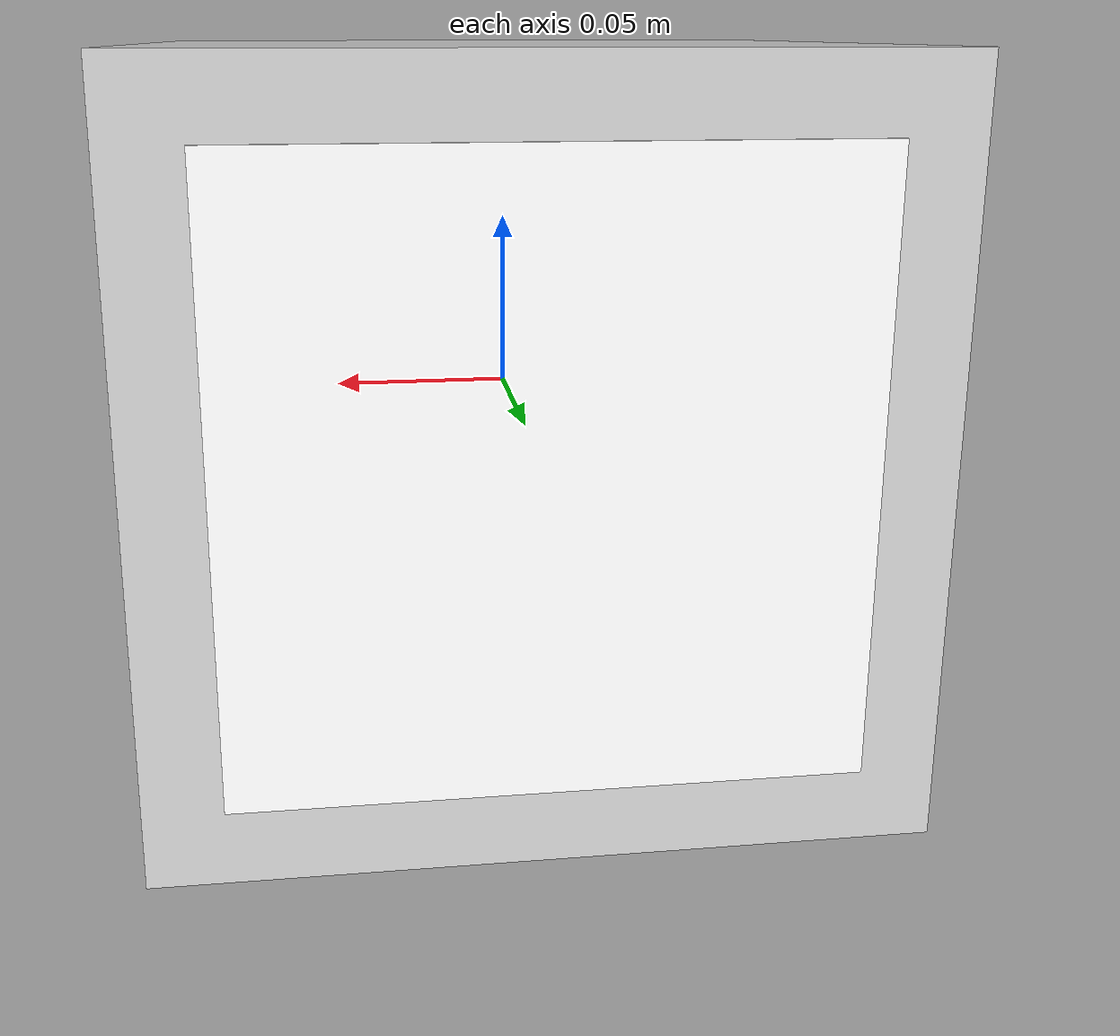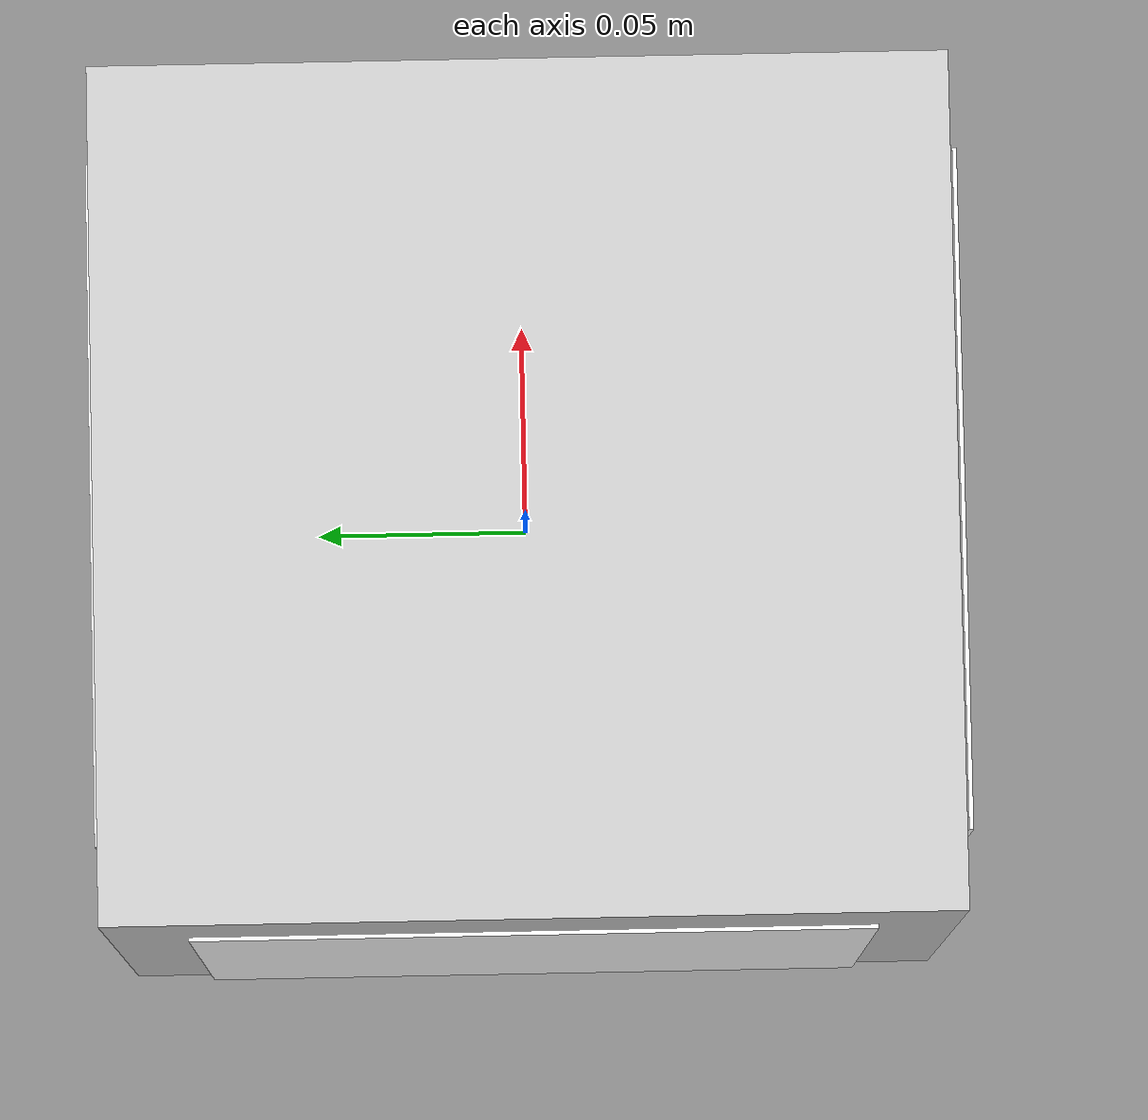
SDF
<?xml version="1.0" ?>
<sdf version="1.9">
  <model name="apriltag_box">
    <static>false</static>
    <link name="link">
      <inertial>
        <mass>1.0</mass>
        <inertia>
          <ixx>0.006666</ixx>
          <ixy>0</ixy>
          <ixz>0</ixz>
          <iyy>0.006666</iyy>
          <iyz>0</iyz>
          <izz>0.006666</izz>
        </inertia>
      </inertial>
      <collision name="collision">
        <geometry>
          <box>
            <size>0.2 0.2 0.2</size>
          </box>
        </geometry>
      </collision>

      <!-- Main Box Body -->
      <visual name="body">
        <geometry>
          <box>
            <size>0.2 0.2 0.2</size>
          </box>
        </geometry>
        <material>
          <ambient>0.8 0.8 0.8 1</ambient>
          <diffuse>0.8 0.8 0.8 1</diffuse>
        </material>
      </visual>

      <!-- Side 0 (Front, x+) - ID 0 -->
      <visual name="visual_tag0">
        <pose>0.101 0 0 0 1.5707 0</pose>
        <geometry>
          <box>
            <size>0.16 0.16 0.001</size>
          </box>
        </geometry>
        <material>
          <ambient>1 1 1 1</ambient>
          <diffuse>1 1 1 1</diffuse>
          <pbr>
            <metal>
              <albedo_map>materials/textures/tag36_11_00000.png</albedo_map>
            </metal>
          </pbr>
        </material>
      </visual>

      <!-- Side 1 (Left, y+) - ID 1 -->
      <visual name="visual_tag2">
        <pose>0 0.101 0 1.5707 0 0</pose>
        <geometry>
          <box>
            <size>0.16 0.16 0.001</size>
          </box>
        </geometry>
        <material>
          <ambient>1 1 1 1</ambient>
          <diffuse>1 1 1 1</diffuse>
          <pbr>
            <metal>
              <albedo_map>materials/textures/tag36_11_00001.png</albedo_map>
            </metal>
          </pbr>
        </material>
      </visual>

      <!-- Side 2 (Back, x-) - ID 2 -->
      <visual name="visual_tag1">
        <pose>-0.102 0 0 0 -1.5707 3.1415</pose>
        <geometry>
          <box>
            <size>0.16 0.16 0.001</size>
          </box>
        </geometry>
        <material>
          <ambient>1 1 1 1</ambient>
          <diffuse>1 1 1 1</diffuse>
          <pbr>
            <metal>
              <albedo_map>materials/textures/tag36_11_00002.png</albedo_map>
            </metal>
          </pbr>
        </material>
      </visual>

      <!-- Side 3 (Right, y-) - ID 3 -->
      <visual name="visual_tag3">
        <pose>0 -0.102 0 -1.5707 0 0</pose>
        <geometry>
          <box>
            <size>0.16 0.16 0.001</size>
          </box>
        </geometry>
        <material>
          <ambient>1 1 1 1</ambient>
          <diffuse>1 1 1 1</diffuse>
          <pbr>
            <metal>
              <albedo_map>materials/textures/tag36_11_00003.png</albedo_map>
            </metal>
          </pbr>
        </material>
      </visual>
    </link>
  </model>
</sdf>
